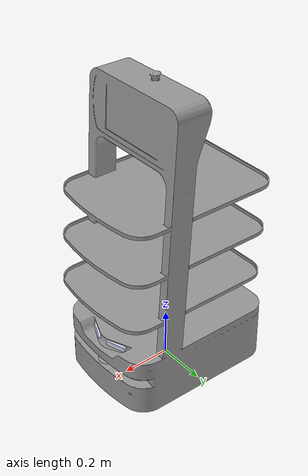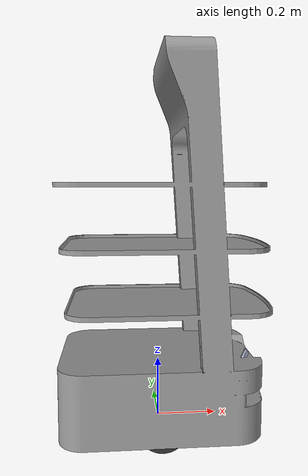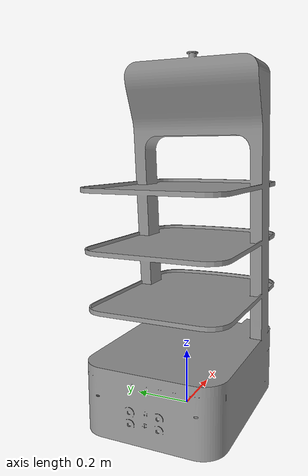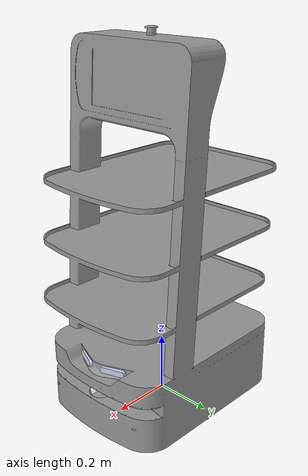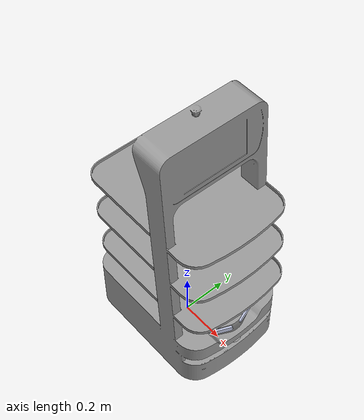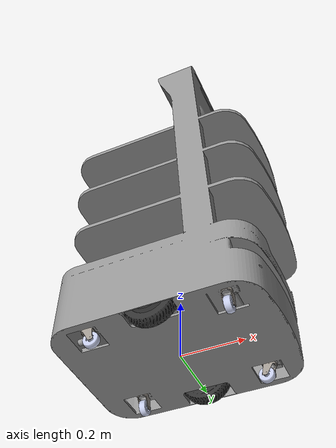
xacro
<?xml version="1.0"?>
<robot xmlns:xacro="http://www.ros.org/wiki/xacro" name="d_bot">

    <!-- include's -->
    <xacro:include filename="$(find d_bot_description)/urdf/caster_transmission.xacro" />
    <xacro:include filename="$(find d_bot_description)/urdf/caster_holder_transmission.xacro" />
    <xacro:include filename="$(find d_bot_description)/urdf/gazebo_physics.xacro" />
    <xacro:include filename="$(find d_bot_description)/urdf/gazebo_sensors.xacro" />
    <xacro:include filename="$(find d_bot_description)/urdf/gazebo_color.xacro" />

    <xacro:macro name="default_inertial" params="mass">
        <inertial>
            <mass value="${mass}" />
            <inertia ixx="1.0" ixy="0.0" ixz="0.0" iyy="1.0" iyz="0.0" izz="1.0" />
        </inertial>
    </xacro:macro>

  <!-- base_link -->
  <link
    name="base_link">
    <xacro:default_inertial mass="100"/>
    <visual>
      <origin
        xyz="0 0 0"
        rpy="0 0 0" />
      <geometry>
        <mesh
          filename="package://d_bot_description/meshes/base_link.STL" />
      </geometry>
      <material
        name="">
        <color
          rgba="0.6 0.6 0.6 1" />
      </material>
    </visual>
    <collision>
      <origin
        xyz="0 0 0"
        rpy="0 0 0" />
      <geometry>
        <mesh
          filename="package://d_bot_description/meshes/collision/base_link.STL" />
      </geometry>
    </collision>
  </link>

  <!-- fl_caster_holder_link -->
  <link
    name="fl_caster_holder_link">
    <xacro:default_inertial mass="10"/>
    <visual>
      <origin
        xyz="0 0 0"
        rpy="0 0 0" />
      <geometry>
        <mesh
          filename="package://d_bot_description/meshes/caster_holder_link.STL" />
      </geometry>
      <material
        name="">
        <color
          rgba="0.647058823529412 0.619607843137255 0.588235294117647 1" />
      </material>
    </visual>
    <collision>
      <origin
        xyz="0 0 0"
        rpy="0 0 0" />
      <geometry>
        <mesh
          filename="package://d_bot_description/meshes/collision/caster_holder_link.STL" />
      </geometry>
    </collision>
  </link>
  <joint
    name="fl_caster_holder_joint"
    type="continuous">
    <origin
      xyz="0.215225039750229 0.1771 -0.0145388598876857"
      rpy="-1.5707963267949 0 0" />
    <parent
      link="base_link" />
    <child
      link="fl_caster_holder_link" />
    <axis
      xyz="0 1 0" />
  </joint>

  <!-- fl_caster_wheel_link -->
  <link
    name="fl_caster_wheel_link">
    <xacro:default_inertial mass="10"/>
    <visual>
      <origin
        xyz="0 0 0"
        rpy="0 0 0" />
      <geometry>
        <mesh
          filename="package://d_bot_description/meshes/caster_wheel_link.STL" />
      </geometry>
      <material
        name="">
        <color
          rgba="0.792156862745098 0.819607843137255 0.933333333333333 1" />
      </material>
    </visual>
    <collision>
      <origin
        xyz="0 0 0"
        rpy="0 0 0" />
      <geometry>
        <mesh
          filename="package://d_bot_description/meshes/collision/caster_wheel_link.STL" />
      </geometry>
    </collision>
  </link>
  <joint
    name="fl_caster_wheel_joint"
    type="continuous">
    <origin
      xyz="-0.0126379418294896 -0.00814162274155295 0"
      rpy="0.152452190017873 -1.5707963267949 0" />
    <parent
      link="fl_caster_holder_link" />
    <child
      link="fl_caster_wheel_link" />
    <axis
      xyz="1 0 0" />
  </joint>

  <!-- fr_caster_holder_link -->
  <link
    name="fr_caster_holder_link">
    <xacro:default_inertial mass="10"/>
    <visual>
      <origin
        xyz="0 0 0"
        rpy="0 0 0" />
      <geometry>
        <mesh
          filename="package://d_bot_description/meshes/caster_holder_link.STL" />
      </geometry>
      <material
        name="">
        <color
          rgba="0.647058823529412 0.619607843137255 0.588235294117647 1" />
      </material>
    </visual>
    <collision>
      <origin
        xyz="0 0 0"
        rpy="0 0 0" />
      <geometry>
        <mesh
          filename="package://d_bot_description/meshes/collision/caster_holder_link.STL" />
      </geometry>
    </collision>
  </link>
  <joint
    name="fr_caster_holder_joint"
    type="continuous">
    <origin
      xyz="0.214825039750222 -0.177099999999992 -0.0145388598876857"
      rpy="-1.57079632679486 0 -1.5707963267949" />
    <parent
      link="base_link" />
    <child
      link="fr_caster_holder_link" />
    <axis
      xyz="0 1 0" />
  </joint>

  <!-- fr_caster_wheel_link -->
  <link
    name="fr_caster_wheel_link">
    <xacro:default_inertial mass="10"/>
    <visual>
      <origin
        xyz="0 0 0"
        rpy="0 0 0" />
      <geometry>
        <mesh
          filename="package://d_bot_description/meshes/caster_wheel_link.STL" />
      </geometry>
      <material
        name="">
        <color
          rgba="0.792156862745098 0.819607843137255 0.933333333333333 1" />
      </material>
    </visual>
    <collision>
      <origin
        xyz="0 0 0"
        rpy="0 0 0" />
      <geometry>
        <mesh
          filename="package://d_bot_description/meshes/collision/caster_wheel_link.STL" />
      </geometry>
    </collision>
  </link>
  <joint
    name="fr_caster_wheel_joint"
    type="continuous">
    <origin
      xyz="-0.0126379418294887 -0.00814162274155716 0"
      rpy="0.233129638410502 -1.5707963267949 0" />
    <parent
      link="fr_caster_holder_link" />
    <child
      link="fr_caster_wheel_link" />
    <axis
      xyz="1 0 0" />
  </joint>

  <!-- bl_caster_holder_link -->
  <link
    name="bl_caster_holder_link">
    <xacro:default_inertial mass="10"/>
    <visual>
      <origin
        xyz="0 0 0"
        rpy="0 0 0" />
      <geometry>
        <mesh
          filename="package://d_bot_description/meshes/caster_holder_link.STL" />
      </geometry>
      <material
        name="">
        <color
          rgba="0.647058823529412 0.619607843137255 0.588235294117647 1" />
      </material>
    </visual>
    <collision>
      <origin
        xyz="0 0 0"
        rpy="0 0 0" />
      <geometry>
        <mesh
          filename="package://d_bot_description/meshes/collision/caster_holder_link.STL" />
      </geometry>
    </collision>
  </link>
  <joint
    name="bl_caster_holder_joint"
    type="continuous">
    <origin
      xyz="-0.20600856677299 0.177100000000002 -0.0145388598877"
      rpy="-1.57079632679486 0 -1.5707963267949" />
    <parent
      link="base_link" />
    <child
      link="bl_caster_holder_link" />
    <axis
      xyz="0 1 0" />
  </joint>

  <!-- bl_caster_wheel_link -->
  <link
    name="bl_caster_wheel_link">
    <xacro:default_inertial mass="10"/>
    <visual>
      <origin
        xyz="0 0 0"
        rpy="0 0 0" />
      <geometry>
        <mesh
          filename="package://d_bot_description/meshes/caster_wheel_link.STL" />
      </geometry>
      <material
        name="">
        <color
          rgba="0.792156862745098 0.819607843137255 0.933333333333333 1" />
      </material>
    </visual>
    <collision>
      <origin
        xyz="0 0 0"
        rpy="0 0 0" />
      <geometry>
        <mesh
          filename="package://d_bot_description/meshes/collision/caster_wheel_link.STL" />
      </geometry>
    </collision>
  </link>
  <joint
    name="bl_caster_wheel_joint"
    type="continuous">
    <origin
      xyz="-0.0126379418294879 -0.00814162274155106 0"
      rpy="1.43676256222585 -1.5707963267949 0" />
    <parent
      link="bl_caster_holder_link" />
    <child
      link="bl_caster_wheel_link" />
    <axis
      xyz="1 0 0" />
  </joint>

  <!-- br_caster_holder_link -->
  <link
    name="br_caster_holder_link">
    <xacro:default_inertial mass="10"/>
    <visual>
      <origin
        xyz="0 0 0"
        rpy="0 0 0" />
      <geometry>
        <mesh
          filename="package://d_bot_description/meshes/caster_holder_link.STL" />
      </geometry>
      <material
        name="">
        <color
          rgba="0.647058823529412 0.619607843137255 0.588235294117647 1" />
      </material>
    </visual>
    <collision>
      <origin
        xyz="0 0 0"
        rpy="0 0 0" />
      <geometry>
        <mesh
          filename="package://d_bot_description/meshes/collision/caster_holder_link.STL" />
      </geometry>
    </collision>
  </link>
  <joint
    name="br_caster_holder_joint"
    type="continuous">
    <origin
      xyz="-0.206408566772991 -0.177100000000006 -0.014538859887695"
      rpy="-1.57079632679489 0 -3.08172138398829" />
    <parent
      link="base_link" />
    <child
      link="br_caster_holder_link" />
    <axis
      xyz="0 1 0" />
  </joint>

  <!-- br_caster_wheel_link -->
  <link
    name="br_caster_wheel_link">
    <xacro:default_inertial mass="10"/>
    <visual>
      <origin
        xyz="0 0 0"
        rpy="0 0 0" />
      <geometry>
        <mesh
          filename="package://d_bot_description/meshes/caster_wheel_link.STL" />
      </geometry>
      <material
        name="">
        <color
          rgba="0.792156862745098 0.819607843137255 0.933333333333333 1" />
      </material>
    </visual>
    <collision>
      <origin
        xyz="0 0 0"
        rpy="0 0 0" />
      <geometry>
        <mesh
          filename="package://d_bot_description/meshes/collision/caster_wheel_link.STL" />
      </geometry>
    </collision>
  </link>
  <joint
    name="br_caster_wheel_joint"
    type="continuous">
    <origin
      xyz="-0.0126379418294893 -0.00814162274154767 0"
      rpy="0 -1.5707963267949 0" />
    <parent
      link="br_caster_holder_link" />
    <child
      link="br_caster_wheel_link" />
    <axis
      xyz="1 0 0" />
  </joint>

  <!-- drive_left_link -->
  <link
    name="drive_left_link">
    <xacro:default_inertial mass="200"/>
    <visual>
      <origin
        xyz="0 0 0"
        rpy="0 0 0" />
      <geometry>
        <mesh
          filename="package://d_bot_description/meshes/drive_left_link.STL" />
      </geometry>
      <material
        name="">
        <color
          rgba="0.2 0.2 0.2 1" />
      </material>
    </visual>
    <collision>
      <origin
        xyz="0 0 0"
        rpy="0 0 0" />
      <geometry>
        <mesh
          filename="package://d_bot_description/meshes/collision/drive_left_link.STL" />
      </geometry>
    </collision>
  </link>
  <joint
    name="drive_left_joint"
    type="continuous">
    <origin
      xyz="-7.34417430403589E-06 0.254110517 0.050"
      rpy="-0.10097 0 -1.5708" />
    <parent
      link="base_link" />
    <child
      link="drive_left_link" />
    <axis
      xyz="-1 0 0" />
  </joint>

  <!-- drive_right_link -->
  <link
    name="drive_right_link">
    <xacro:default_inertial mass="200"/>
    <visual>
      <origin
        xyz="0 0 0"
        rpy="0 0 0" />
      <geometry>
        <mesh
          filename="package://d_bot_description/meshes/drive_right_link.STL" />
      </geometry>
      <material
        name="">
        <color
          rgba="0.2 0.2 0.2 1" />
      </material>
    </visual>
    <collision>
      <origin
        xyz="0 0 0"
        rpy="0 0 0" />
      <geometry>
        <mesh
          filename="package://d_bot_description/meshes/collision/drive_right_link.STL" />
      </geometry>
    </collision>
  </link>
  <joint
    name="drive_right_joint"
    type="continuous">
    <origin
      xyz="7.34417430392487E-06 -0.254110517 0.050"
      rpy="-0.10097 0 1.5708" />
    <parent
      link="base_link" />
    <child
      link="drive_right_link" />
    <axis
      xyz="1 0 0" />
  </joint>

  <!-- imu_link and joint-->
  <link name="imu_link">
    <xacro:default_inertial mass="2"/>
    <visual name="">
      <origin xyz="0.0 0.0 0.0" rpy="0.0 0.0 0.0"/>
      <geometry>
        <box size="0.05 0.05 0.05"/>
      </geometry>
      <material name="">
        <color rgba="1.0 0.0 0.0 1.0"/>
        <texture filename=""/>
      </material>
    </visual>
    <collision>
      <origin xyz="0.0 0.0 0.0" rpy="0.0 0.0 0.0"/>
      <geometry>
        <box size="0.1 0.1 0.1"/>
      </geometry>
    </collision>
  </link>

  <joint name="imu_joint" type="fixed">
    <axis xyz="0 0 0" />
    <origin xyz="0 0 0.1" rpy="0 0 0"/>
    <parent link="base_link"/>
    <child link="imu_link"/>
  </joint>

<!-- front_lidar_link -->
  <link
    name="front_lidar_link">
    <xacro:default_inertial mass="2"/>
    <visual>
      <origin
        xyz="0 0 -0.03"
        rpy="1.5708 0 1.5708" />
      <geometry>
        <mesh
          filename="package://d_bot_description/meshes/front_lidar_link.STL" />
      </geometry>
      <material
        name="">
        <color
          rgba="0.752941176470588 0.752941176470588 0.752941176470588 0.4" />
      </material>
    </visual>
    <collision>
      <origin
        xyz="-0.05 0 -0.03"
        rpy="0 0 1.5708" />
      <geometry>
        <cylinder radius="0.03" length="0.015"/>
      </geometry>
    </collision>
  </link>
  <joint
    name="front_lidar_joint"
    type="fixed">
    <origin
      xyz="0.32109 0 0.1423"
      rpy="0 0 0" />
    <parent
      link="base_link" />
    <child
      link="front_lidar_link" />
    <axis
      xyz="0 0 0" />
  </joint>

  <!-- left_rs_link -->
  <link
    name="left_rs_link">
    <xacro:default_inertial mass="1"/>
    <visual>
      <origin
        xyz="-0.007 0 0"
        rpy="1.5708 0 1.7" />
      <geometry>
        <mesh
          filename="package://d_bot_description/meshes/left_rs_link.STL" />
      </geometry>
      <material
        name="">
        <color
          rgba="0.792156862745098 0.819607843137255 0.933333333333333 1" />
      </material>
    </visual>
  </link>
  <joint
    name="left_rs_joint"
    type="fixed">
    <origin
      xyz="0.3 0.063516 0.2198"
      rpy="0 0 0.2" />
    <parent
      link="base_link" />
    <child
      link="left_rs_link" />
    <axis
      xyz="0 0 0" />
  </joint>
  <!-- for visual -->
  <link
    name="left_rs_visual_link">
    <xacro:default_inertial mass="1"/>
  </link>

  <joint
    name="left_rs_visual_joint"
    type="fixed">
    <origin
      xyz="0.3 0.063516 0.2198"
      rpy="-1.5708 0 -1.3708" />
    <parent
      link="base_link" />
    <child
      link="left_rs_visual_link" />
    <axis
      xyz="0 0 0" />
  </joint>

  <!-- right_rs_link -->
  <link
    name="right_rs_link">
    <xacro:default_inertial mass="1"/>
    <visual>
      <origin
        xyz="-0.007 0 0"
        rpy="1.46278949747624 0 1.35" />
      <geometry>
        <mesh
          filename="package://d_bot_description/meshes/right_rs_link.STL" />
      </geometry>
      <material
        name="">
        <color
          rgba="0.792156862745098 0.819607843137255 0.933333333333333 1" />
      </material>
    </visual>
  </link>
  <joint
    name="right_rs_joint"
    type="fixed">
    <origin
      xyz="0.3 -0.0630797813490415 0.219229621554835"
      rpy="0 0 -0.2" />
    <parent
      link="base_link" />
    <child
      link="right_rs_link" />
    <axis
      xyz="0 0 0" />
  </joint>
  <!-- for visual -->
  <link
    name="right_rs_visual_link">
    <xacro:default_inertial mass="1"/>
  </link>

  <joint
    name="right_rs_visual_joint"
    type="fixed">
    <origin
      xyz="0.3 -0.0630797813490415 0.219229621554835"
      rpy="-1.5708 0 -1.7708" />
    <parent
      link="base_link" />
    <child
      link="right_rs_visual_link" />
    <axis
      xyz="0 0 0" />
  </joint>

  <!-- for left drive wheel -->

  <!-- This block provides the simulator (Gazebo) with information on a few additional
  physical properties. See http://gazebosim.org/tutorials/?tut=ros_urdf for more-->
  <gazebo reference="drive_wheel_left">
      <mu1 value="200.0"/>
      <mu2 value="100.0"/>
      <kp value="10000000.0" />
      <kd value="1.0" />
      <material>Gazebo/Grey</material>
  </gazebo>

  <!-- This block connects the wheel joint to an actuator (motor), which informs both
  simulation and visualization of the robot -->
  <transmission name="drive_wheel_left_trans">
      <type>transmission_interface/SimpleTransmission</type>
      <actuator name="drive_wheel_left_motor">
          <mechanicalReduction>1</mechanicalReduction>
      </actuator>
      <joint name="drive_left_joint">
          <hardwareInterface>hardware_interface/VelocityJointInterface</hardwareInterface>
      </joint>
  </transmission>

  <!-- for right drive wheel -->

  <!-- This block provides the simulator (Gazebo) with information on a few additional
  physical properties. See http://gazebosim.org/tutorials/?tut=ros_urdf for more-->
  <gazebo reference="drive_wheel_right">
      <mu1 value="200.0"/>
      <mu2 value="100.0"/>
      <kp value="10000000.0" />
      <kd value="1.0" />
      <material>Gazebo/Grey</material>
  </gazebo>

  <!-- This block connects the wheel joint to an actuator (motor), which informs both
  simulation and visualization of the robot -->
  <transmission name="drive_wheel_right_trans">
      <type>transmission_interface/SimpleTransmission</type>
      <actuator name="drive_wheel_right_motor">
          <mechanicalReduction>1</mechanicalReduction>
      </actuator>
      <joint name="drive_right_joint">
          <hardwareInterface>hardware_interface/VelocityJointInterface</hardwareInterface>
      </joint>
  </transmission>

  <!-- Gazebo plugin for ROS Control -->
  <gazebo>

      <plugin name="gazebo_ros_control" filename="libgazebo_ros_control.so">
          <robotNamespace>/</robotNamespace>
      </plugin>

  </gazebo>

</robot>

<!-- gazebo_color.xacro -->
<robot xmlns:xacro="http://www.ros.org/wiki/xacro" name="d_bot">

    <!-- Color materials -->
    <material name="blue">
        <color rgba="0 0 0.8 1"/>
    </material>

    <material name="black">
        <color rgba="0 0 0 1"/>
    </material>

    <material name="white">
        <color rgba="1 1 1 1"/>
    </material>

    <gazebo reference="base_link">
        <mu1>0.2</mu1>
        <mu2>0.2</mu2>
        <selfCollide>true</selfCollide>
        <gravity>true</gravity>
        <material>Gazebo/Grey</material>
    </gazebo>

    <gazebo reference="front_lidar_link">
        <mu1>0.2</mu1>
        <mu2>0.2</mu2>
        <selfCollide>true</selfCollide>
        <gravity>true</gravity>
        <material>Gazebo/Black</material>
    </gazebo>

</robot>
